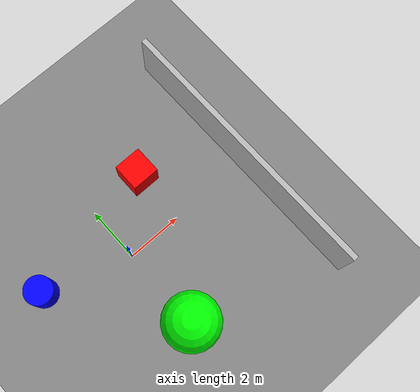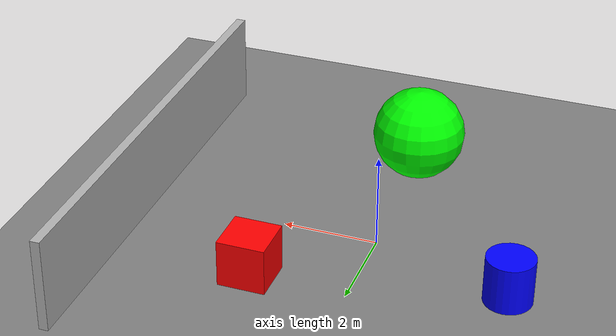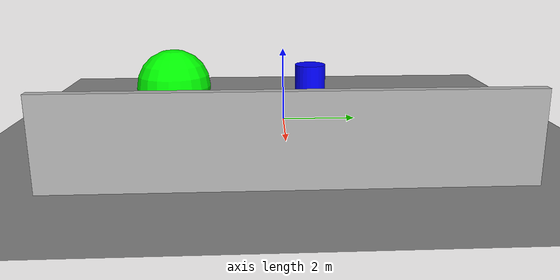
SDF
<?xml version="1.0"?>
<sdf version="1.9">
    <world name="pnp_world">
        <physics name="1ms" type="ignored">
            <max_step_size>0.001</max_step_size>
            <real_time_factor>1.0</real_time_factor>
        </physics>

        <plugin filename="libgz-sim-physics-system.so" name="gz::sim::systems::Physics"></plugin>
        <plugin filename="libgz-sim-user-commands-system.so" name="gz::sim::systems::UserCommands"></plugin>
        <plugin filename="libgz-sim-scene-broadcaster-system.so"
            name="gz::sim::systems::SceneBroadcaster"></plugin>
        <plugin filename="libgz-sim-sensors-system.so" name="gz::sim::systems::Sensors">
            <render_engine>ogre2</render_engine>
        </plugin>

        <!-- Lighting -->
        <light type="directional" name="sun">
            <cast_shadows>true</cast_shadows>
            <pose>0 0 10 0 0 0</pose>
            <diffuse>1.0 1.0 1.0 1</diffuse>
            <specular>0.5 0.5 0.5 1</specular>
            <direction>-0.5 0.1 -0.9</direction>
        </light>

        <!-- Additional point light for better illumination -->
        <light type="point" name="point_light">
            <pose>0 0 5 0 0 0</pose>
            <diffuse>0.8 0.8 0.8 1</diffuse>
            <specular>0.2 0.2 0.2 1</specular>
            <attenuation>
                <range>50</range>
                <constant>0.5</constant>
                <linear>0.01</linear>
                <quadratic>0.001</quadratic>
            </attenuation>
        </light>

        <!-- Ground plane -->
        <model name="ground_plane">
            <static>true</static>
            <link name="link">
                <collision name="collision">
                    <geometry>
                        <plane>
                            <normal>0 0 1</normal>
                            <size>100 100</size>
                        </plane>
                    </geometry>
                </collision>
                <visual name="visual">
                    <geometry>
                        <plane>
                            <normal>0 0 1</normal>
                            <size>100 100</size>
                        </plane>
                    </geometry>
                    <material>
                        <ambient>0.5 0.5 0.5 1</ambient>
                        <diffuse>0.5 0.5 0.5 1</diffuse>
                    </material>
                </visual>
            </link>
        </model>

        <!-- Box obstacle -->
        <model name="box1">
            <pose>2 2 0.5 0 0 0</pose>
            <link name="box_link">
                <inertial>
                    <mass>1.0</mass>
                    <inertia>
                        <ixx>0.166667</ixx>
                        <ixy>0</ixy>
                        <ixz>0</ixz>
                        <iyy>0.166667</iyy>
                        <iyz>0</iyz>
                        <izz>0.166667</izz>
                    </inertia>
                </inertial>
                <collision name="collision">
                    <geometry>
                        <box>
                            <size>1 1 1</size>
                        </box>
                    </geometry>
                </collision>
                <visual name="visual">
                    <geometry>
                        <box>
                            <size>1 1 1</size>
                        </box>
                    </geometry>
                    <material>
                        <ambient>1 0 0 1</ambient>
                        <diffuse>1 0 0 1</diffuse>
                    </material>
                </visual>
            </link>
        </model>

        <!-- Cylinder obstacle -->
        <model name="cylinder1">
            <pose>-3 1 0.5 0 0 0</pose>
            <link name="cylinder_link">
                <inertial>
                    <mass>1.0</mass>
                    <inertia>
                        <ixx>0.145833</ixx>
                        <ixy>0</ixy>
                        <ixz>0</ixz>
                        <iyy>0.145833</iyy>
                        <iyz>0</iyz>
                        <izz>0.125</izz>
                    </inertia>
                </inertial>
                <collision name="collision">
                    <geometry>
                        <cylinder>
                            <radius>0.5</radius>
                            <length>1.0</length>
                        </cylinder>
                    </geometry>
                </collision>
                <visual name="visual">
                    <geometry>
                        <cylinder>
                            <radius>0.5</radius>
                            <length>1.0</length>
                        </cylinder>
                    </geometry>
                    <material>
                        <ambient>0 0 1 1</ambient>
                        <diffuse>0 0 1 1</diffuse>
                    </material>
                </visual>
            </link>
        </model>

        <!-- Wall -->
        <model name="wall">
            <pose>5 0 1 0 0 0</pose>
            <static>true</static>
            <link name="wall_link">
                <collision name="collision">
                    <geometry>
                        <box>
                            <size>0.2 10 2</size>
                        </box>
                    </geometry>
                </collision>
                <visual name="visual">
                    <geometry>
                        <box>
                            <size>0.2 10 2</size>
                        </box>
                    </geometry>
                    <material>
                        <ambient>0.7 0.7 0.7 1</ambient>
                        <diffuse>0.7 0.7 0.7 1</diffuse>
                    </material>
                </visual>
            </link>
        </model>

        <!-- Sphere -->
        <model name="sphere1">
            <pose>0 -3 1 0 0 0</pose>
            <link name="sphere_link">
                <inertial>
                    <mass>1.0</mass>
                    <inertia>
                        <ixx>0.4</ixx>
                        <ixy>0</ixy>
                        <ixz>0</ixz>
                        <iyy>0.4</iyy>
                        <iyz>0</iyz>
                        <izz>0.4</izz>
                    </inertia>
                </inertial>
                <collision name="collision">
                    <geometry>
                        <sphere>
                            <radius>1.0</radius>
                        </sphere>
                    </geometry>
                </collision>
                <visual name="visual">
                    <geometry>
                        <sphere>
                            <radius>1.0</radius>
                        </sphere>
                    </geometry>
                    <material>
                        <ambient>0 1 0 1</ambient>
                        <diffuse>0 1 0 1</diffuse>
                    </material>
                </visual>
            </link>
        </model>

    </world>
</sdf>
